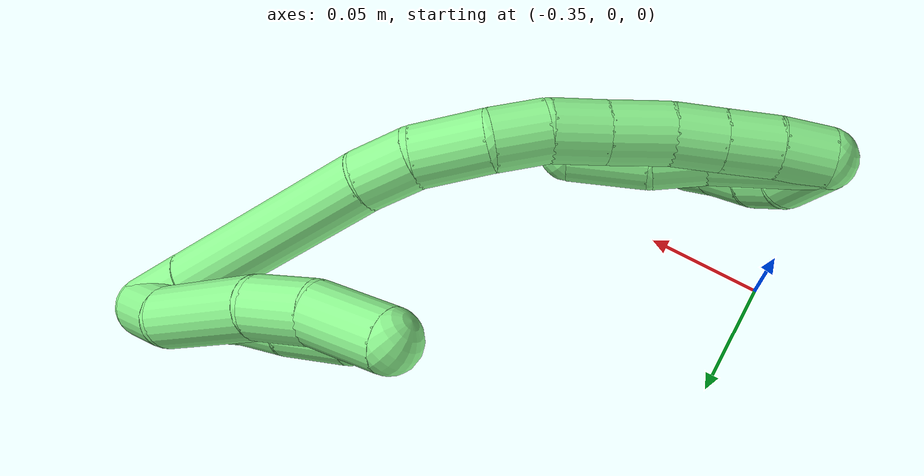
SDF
<sdf version="1.7">
 <world name="default">
  <model name="13">
   <static>0</static>
   <link name="13">
    <collision name="collision-cylinder-e_1_2_8">
     <pose>0.002702 -0.010104 -0.010222 2.36197 0.185836 0.446098</pose>
     <geometry><cylinder><radius>0.0125</radius><length>0.02925</length></cylinder></geometry>
     <surface>
      <friction><ode><mu>1.16</mu><mu2>1.16</mu2><slip1>0</slip1><slip2>0</slip2></ode></friction>
      <contact><ode><kp>1e+06</kp><kd>1</kd><max_vel>0</max_vel><min_depth>0.001</min_depth></ode></contact>
     </surface>
    </collision>
    <visual name="visual-cylinder-e_1_2_8">
     <pose>0.002702 -0.010104 -0.010222 2.36197 0.185836 0.446098</pose>
     <geometry><cylinder><radius>0.0125</radius><length>0.02925</length></cylinder></geometry>
     <material><ambient>0.564706 0.984314 0.572549 1</ambient></material>
    </visual>
    <collision name="collision-cylinder-e_2_8_9">
     <pose>0.005281 -0.034804 -0.045813 2.61953 -0.004215 -0.015778</pose>
     <geometry><cylinder><radius>0.0125</radius><length>0.058537</length></cylinder></geometry>
     <surface>
      <friction><ode><mu>1.16</mu><mu2>1.16</mu2><slip1>0</slip1><slip2>0</slip2></ode></friction>
      <contact><ode><kp>1e+06</kp><kd>1</kd><max_vel>0</max_vel><min_depth>0.001</min_depth></ode></contact>
     </surface>
    </collision>
    <visual name="visual-cylinder-e_2_8_9">
     <pose>0.005281 -0.034804 -0.045813 2.61953 -0.004215 -0.015778</pose>
     <geometry><cylinder><radius>0.0125</radius><length>0.058537</length></cylinder></geometry>
     <material><ambient>0.564706 0.984314 0.572549 1</ambient></material>
    </visual>
    <collision name="collision-cylinder-e_3_9_10">
     <pose>0.001836 -0.057222 -0.082377 2.53161 -0.238569 -0.727541</pose>
     <geometry><cylinder><radius>0.0125</radius><length>0.02811</length></cylinder></geometry>
     <surface>
      <friction><ode><mu>1.16</mu><mu2>1.16</mu2><slip1>0</slip1><slip2>0</slip2></ode></friction>
      <contact><ode><kp>1e+06</kp><kd>1</kd><max_vel>0</max_vel><min_depth>0.001</min_depth></ode></contact>
     </surface>
    </collision>
    <visual name="visual-cylinder-e_3_9_10">
     <pose>0.001836 -0.057222 -0.082377 2.53161 -0.238569 -0.727541</pose>
     <geometry><cylinder><radius>0.0125</radius><length>0.02811</length></cylinder></geometry>
     <material><ambient>0.564706 0.984314 0.572549 1</ambient></material>
    </visual>
    <collision name="collision-cylinder-e_4_10_6">
     <pose>-0.006226 -0.077117 -0.104642 2.31302 -0.281748 -0.623931</pose>
     <geometry><cylinder><radius>0.0125</radius><length>0.034104</length></cylinder></geometry>
     <surface>
      <friction><ode><mu>1.16</mu><mu2>1.16</mu2><slip1>0</slip1><slip2>0</slip2></ode></friction>
      <contact><ode><kp>1e+06</kp><kd>1</kd><max_vel>0</max_vel><min_depth>0.001</min_depth></ode></contact>
     </surface>
    </collision>
    <visual name="visual-cylinder-e_4_10_6">
     <pose>-0.006226 -0.077117 -0.104642 2.31302 -0.281748 -0.623931</pose>
     <geometry><cylinder><radius>0.0125</radius><length>0.034104</length></cylinder></geometry>
     <material><ambient>0.564706 0.984314 0.572549 1</ambient></material>
    </visual>
    <collision name="collision-cylinder-e_1_2_11">
     <pose>-0.010287 -0.010885 -0.017678 2.58968 -0.460056 -1.3819</pose>
     <geometry><cylinder><radius>0.0125</radius><length>0.04634</length></cylinder></geometry>
     <surface>
      <friction><ode><mu>1.16</mu><mu2>1.16</mu2><slip1>0</slip1><slip2>0</slip2></ode></friction>
      <contact><ode><kp>1e+06</kp><kd>1</kd><max_vel>0</max_vel><min_depth>0.001</min_depth></ode></contact>
     </surface>
    </collision>
    <visual name="visual-cylinder-e_1_2_11">
     <pose>-0.010287 -0.010885 -0.017678 2.58968 -0.460056 -1.3819</pose>
     <geometry><cylinder><radius>0.0125</radius><length>0.04634</length></cylinder></geometry>
     <material><ambient>0.564706 0.984314 0.572549 1</ambient></material>
    </visual>
    <collision name="collision-cylinder-e_2_11_12">
     <pose>-0.023511 -0.029089 -0.043676 2.42013 -0.259079 -0.665004</pose>
     <geometry><cylinder><radius>0.0125</radius><length>0.022925</length></cylinder></geometry>
     <surface>
      <friction><ode><mu>1.16</mu><mu2>1.16</mu2><slip1>0</slip1><slip2>0</slip2></ode></friction>
      <contact><ode><kp>1e+06</kp><kd>1</kd><max_vel>0</max_vel><min_depth>0.001</min_depth></ode></contact>
     </surface>
    </collision>
    <visual name="visual-cylinder-e_2_11_12">
     <pose>-0.023511 -0.029089 -0.043676 2.42013 -0.259079 -0.665004</pose>
     <geometry><cylinder><radius>0.0125</radius><length>0.022925</length></cylinder></geometry>
     <material><ambient>0.564706 0.984314 0.572549 1</ambient></material>
    </visual>
    <collision name="collision-cylinder-e_3_12_5">
     <pose>-0.030811 -0.045118 -0.06388 2.50906 -0.287879 -0.833881</pose>
     <geometry><cylinder><radius>0.0125</radius><length>0.030735</length></cylinder></geometry>
     <surface>
      <friction><ode><mu>1.16</mu><mu2>1.16</mu2><slip1>0</slip1><slip2>0</slip2></ode></friction>
      <contact><ode><kp>1e+06</kp><kd>1</kd><max_vel>0</max_vel><min_depth>0.001</min_depth></ode></contact>
     </surface>
    </collision>
    <visual name="visual-cylinder-e_3_12_5">
     <pose>-0.030811 -0.045118 -0.06388 2.50906 -0.287879 -0.833881</pose>
     <geometry><cylinder><radius>0.0125</radius><length>0.030735</length></cylinder></geometry>
     <material><ambient>0.564706 0.984314 0.572549 1</ambient></material>
    </visual>
    <collision name="collision-cylinder-e_1_2_13">
     <pose>-0.002332 -0.001373 -0.012957 3.03603 -0.177109 -2.0681</pose>
     <geometry><cylinder><radius>0.0125</radius><length>0.026472</length></cylinder></geometry>
     <surface>
      <friction><ode><mu>1.16</mu><mu2>1.16</mu2><slip1>0</slip1><slip2>0</slip2></ode></friction>
      <contact><ode><kp>1e+06</kp><kd>1</kd><max_vel>0</max_vel><min_depth>0.001</min_depth></ode></contact>
     </surface>
    </collision>
    <visual name="visual-cylinder-e_1_2_13">
     <pose>-0.002332 -0.001373 -0.012957 3.03603 -0.177109 -2.0681</pose>
     <geometry><cylinder><radius>0.0125</radius><length>0.026472</length></cylinder></geometry>
     <material><ambient>0.564706 0.984314 0.572549 1</ambient></material>
    </visual>
    <collision name="collision-cylinder-e_2_13_14">
     <pose>-0.01391 -0.006301 -0.069169 3.05959 -0.209905 -2.3988</pose>
     <geometry><cylinder><radius>0.0125</radius><length>0.08875</length></cylinder></geometry>
     <surface>
      <friction><ode><mu>1.16</mu><mu2>1.16</mu2><slip1>0</slip1><slip2>0</slip2></ode></friction>
      <contact><ode><kp>1e+06</kp><kd>1</kd><max_vel>0</max_vel><min_depth>0.001</min_depth></ode></contact>
     </surface>
    </collision>
    <visual name="visual-cylinder-e_2_13_14">
     <pose>-0.01391 -0.006301 -0.069169 3.05959 -0.209905 -2.3988</pose>
     <geometry><cylinder><radius>0.0125</radius><length>0.08875</length></cylinder></geometry>
     <material><ambient>0.564706 0.984314 0.572549 1</ambient></material>
    </visual>
    <collision name="collision-cylinder-e_3_14_15">
     <pose>-0.026942 -0.01095 -0.123177 3.04026 -0.336868 -2.56194</pose>
     <geometry><cylinder><radius>0.0125</radius><length>0.022905</length></cylinder></geometry>
     <surface>
      <friction><ode><mu>1.16</mu><mu2>1.16</mu2><slip1>0</slip1><slip2>0</slip2></ode></friction>
      <contact><ode><kp>1e+06</kp><kd>1</kd><max_vel>0</max_vel><min_depth>0.001</min_depth></ode></contact>
     </surface>
    </collision>
    <visual name="visual-cylinder-e_3_14_15">
     <pose>-0.026942 -0.01095 -0.123177 3.04026 -0.336868 -2.56194</pose>
     <geometry><cylinder><radius>0.0125</radius><length>0.022905</length></cylinder></geometry>
     <material><ambient>0.564706 0.984314 0.572549 1</ambient></material>
    </visual>
    <collision name="collision-cylinder-e_4_15_16">
     <pose>-0.038523 -0.014576 -0.146184 2.93775 -0.55719 -2.45479</pose>
     <geometry><cylinder><radius>0.0125</radius><length>0.029485</length></cylinder></geometry>
     <surface>
      <friction><ode><mu>1.16</mu><mu2>1.16</mu2><slip1>0</slip1><slip2>0</slip2></ode></friction>
      <contact><ode><kp>1e+06</kp><kd>1</kd><max_vel>0</max_vel><min_depth>0.001</min_depth></ode></contact>
     </surface>
    </collision>
    <visual name="visual-cylinder-e_4_15_16">
     <pose>-0.038523 -0.014576 -0.146184 2.93775 -0.55719 -2.45479</pose>
     <geometry><cylinder><radius>0.0125</radius><length>0.029485</length></cylinder></geometry>
     <material><ambient>0.564706 0.984314 0.572549 1</ambient></material>
    </visual>
    <collision name="collision-cylinder-e_5_16_17">
     <pose>-0.054254 -0.017623 -0.166032 3.07404 -0.806158 -2.98344</pose>
     <geometry><cylinder><radius>0.0125</radius><length>0.021992</length></cylinder></geometry>
     <surface>
      <friction><ode><mu>1.16</mu><mu2>1.16</mu2><slip1>0</slip1><slip2>0</slip2></ode></friction>
      <contact><ode><kp>1e+06</kp><kd>1</kd><max_vel>0</max_vel><min_depth>0.001</min_depth></ode></contact>
     </surface>
    </collision>
    <visual name="visual-cylinder-e_5_16_17">
     <pose>-0.054254 -0.017623 -0.166032 3.07404 -0.806158 -2.98344</pose>
     <geometry><cylinder><radius>0.0125</radius><length>0.021992</length></cylinder></geometry>
     <material><ambient>0.564706 0.984314 0.572549 1</ambient></material>
    </visual>
    <collision name="collision-cylinder-e_6_17_18">
     <pose>-0.071406 -0.019791 -0.17955 2.8692 -0.98238 -2.63998</pose>
     <geometry><cylinder><radius>0.0125</radius><length>0.022162</length></cylinder></geometry>
     <surface>
      <friction><ode><mu>1.16</mu><mu2>1.16</mu2><slip1>0</slip1><slip2>0</slip2></ode></friction>
      <contact><ode><kp>1e+06</kp><kd>1</kd><max_vel>0</max_vel><min_depth>0.001</min_depth></ode></contact>
     </surface>
    </collision>
    <visual name="visual-cylinder-e_6_17_18">
     <pose>-0.071406 -0.019791 -0.17955 2.8692 -0.98238 -2.63998</pose>
     <geometry><cylinder><radius>0.0125</radius><length>0.022162</length></cylinder></geometry>
     <material><ambient>0.564706 0.984314 0.572549 1</ambient></material>
    </visual>
    <collision name="collision-cylinder-e_7_18_19">
     <pose>-0.090985 -0.02334 -0.192508 2.87858 -0.958043 -2.64285</pose>
     <geometry><cylinder><radius>0.0125</radius><length>0.025332</length></cylinder></geometry>
     <surface>
      <friction><ode><mu>1.16</mu><mu2>1.16</mu2><slip1>0</slip1><slip2>0</slip2></ode></friction>
      <contact><ode><kp>1e+06</kp><kd>1</kd><max_vel>0</max_vel><min_depth>0.001</min_depth></ode></contact>
     </surface>
    </collision>
    <visual name="visual-cylinder-e_7_18_19">
     <pose>-0.090985 -0.02334 -0.192508 2.87858 -0.958043 -2.64285</pose>
     <geometry><cylinder><radius>0.0125</radius><length>0.025332</length></cylinder></geometry>
     <material><ambient>0.564706 0.984314 0.572549 1</ambient></material>
    </visual>
    <collision name="collision-cylinder-e_8_19_20">
     <pose>-0.10963 -0.027887 -0.204712 2.66745 -0.959022 -2.27165</pose>
     <geometry><cylinder><radius>0.0125</radius><length>0.020238</length></cylinder></geometry>
     <surface>
      <friction><ode><mu>1.16</mu><mu2>1.16</mu2><slip1>0</slip1><slip2>0</slip2></ode></friction>
      <contact><ode><kp>1e+06</kp><kd>1</kd><max_vel>0</max_vel><min_depth>0.001</min_depth></ode></contact>
     </surface>
    </collision>
    <visual name="visual-cylinder-e_8_19_20">
     <pose>-0.10963 -0.027887 -0.204712 2.66745 -0.959022 -2.27165</pose>
     <geometry><cylinder><radius>0.0125</radius><length>0.020238</length></cylinder></geometry>
     <material><ambient>0.564706 0.984314 0.572549 1</ambient></material>
    </visual>
    <collision name="collision-cylinder-e_9_20_21">
     <pose>-0.126901 -0.033371 -0.215518 2.67618 -0.95891 -2.28619</pose>
     <geometry><cylinder><radius>0.0125</radius><length>0.021958</length></cylinder></geometry>
     <surface>
      <friction><ode><mu>1.16</mu><mu2>1.16</mu2><slip1>0</slip1><slip2>0</slip2></ode></friction>
      <contact><ode><kp>1e+06</kp><kd>1</kd><max_vel>0</max_vel><min_depth>0.001</min_depth></ode></contact>
     </surface>
    </collision>
    <visual name="visual-cylinder-e_9_20_21">
     <pose>-0.126901 -0.033371 -0.215518 2.67618 -0.95891 -2.28619</pose>
     <geometry><cylinder><radius>0.0125</radius><length>0.021958</length></cylinder></geometry>
     <material><ambient>0.564706 0.984314 0.572549 1</ambient></material>
    </visual>
    <collision name="collision-cylinder-e_10_21_1">
     <pose>-0.14461 -0.039377 -0.22574 2.53592 -1.00183 -2.10442</pose>
     <geometry><cylinder><radius>0.0125</radius><length>0.020707</length></cylinder></geometry>
     <surface>
      <friction><ode><mu>1.16</mu><mu2>1.16</mu2><slip1>0</slip1><slip2>0</slip2></ode></friction>
      <contact><ode><kp>1e+06</kp><kd>1</kd><max_vel>0</max_vel><min_depth>0.001</min_depth></ode></contact>
     </surface>
    </collision>
    <visual name="visual-cylinder-e_10_21_1">
     <pose>-0.14461 -0.039377 -0.22574 2.53592 -1.00183 -2.10442</pose>
     <geometry><cylinder><radius>0.0125</radius><length>0.020707</length></cylinder></geometry>
     <material><ambient>0.564706 0.984314 0.572549 1</ambient></material>
    </visual>
    <collision name="collision-cylinder-e_1_1_22">
     <pose>-0.158288 -0.036808 -0.218582 -0.45495 -0.362277 0.084739</pose>
     <geometry><cylinder><radius>0.0125</radius><length>0.027962</length></cylinder></geometry>
     <surface>
      <friction><ode><mu>1.16</mu><mu2>1.16</mu2><slip1>0</slip1><slip2>0</slip2></ode></friction>
      <contact><ode><kp>1e+06</kp><kd>1</kd><max_vel>0</max_vel><min_depth>0.001</min_depth></ode></contact>
     </surface>
    </collision>
    <visual name="visual-cylinder-e_1_1_22">
     <pose>-0.158288 -0.036808 -0.218582 -0.45495 -0.362277 0.084739</pose>
     <geometry><cylinder><radius>0.0125</radius><length>0.027962</length></cylinder></geometry>
     <material><ambient>0.564706 0.984314 0.572549 1</ambient></material>
    </visual>
    <collision name="collision-cylinder-e_2_22_23">
     <pose>-0.16599 -0.024478 -0.199611 -0.738949 -0.273984 0.10667</pose>
     <geometry><cylinder><radius>0.0125</radius><length>0.020311</length></cylinder></geometry>
     <surface>
      <friction><ode><mu>1.16</mu><mu2>1.16</mu2><slip1>0</slip1><slip2>0</slip2></ode></friction>
      <contact><ode><kp>1e+06</kp><kd>1</kd><max_vel>0</max_vel><min_depth>0.001</min_depth></ode></contact>
     </surface>
    </collision>
    <visual name="visual-cylinder-e_2_22_23">
     <pose>-0.16599 -0.024478 -0.199611 -0.738949 -0.273984 0.10667</pose>
     <geometry><cylinder><radius>0.0125</radius><length>0.020311</length></cylinder></geometry>
     <material><ambient>0.564706 0.984314 0.572549 1</ambient></material>
    </visual>
    <collision name="collision-cylinder-e_3_23_24">
     <pose>-0.172439 -0.006879 -0.183664 -0.901159 -0.257602 0.12515</pose>
     <geometry><cylinder><radius>0.0125</radius><length>0.029056</length></cylinder></geometry>
     <surface>
      <friction><ode><mu>1.16</mu><mu2>1.16</mu2><slip1>0</slip1><slip2>0</slip2></ode></friction>
      <contact><ode><kp>1e+06</kp><kd>1</kd><max_vel>0</max_vel><min_depth>0.001</min_depth></ode></contact>
     </surface>
    </collision>
    <visual name="visual-cylinder-e_3_23_24">
     <pose>-0.172439 -0.006879 -0.183664 -0.901159 -0.257602 0.12515</pose>
     <geometry><cylinder><radius>0.0125</radius><length>0.029056</length></cylinder></geometry>
     <material><ambient>0.564706 0.984314 0.572549 1</ambient></material>
    </visual>
    <collision name="collision-cylinder-e_4_24_4">
     <pose>-0.179106 0.012219 -0.167571 -0.831251 -0.264712 0.117379</pose>
     <geometry><cylinder><radius>0.0125</radius><length>0.022671</length></cylinder></geometry>
     <surface>
      <friction><ode><mu>1.16</mu><mu2>1.16</mu2><slip1>0</slip1><slip2>0</slip2></ode></friction>
      <contact><ode><kp>1e+06</kp><kd>1</kd><max_vel>0</max_vel><min_depth>0.001</min_depth></ode></contact>
     </surface>
    </collision>
    <visual name="visual-cylinder-e_4_24_4">
     <pose>-0.179106 0.012219 -0.167571 -0.831251 -0.264712 0.117379</pose>
     <geometry><cylinder><radius>0.0125</radius><length>0.022671</length></cylinder></geometry>
     <material><ambient>0.564706 0.984314 0.572549 1</ambient></material>
    </visual>
    <collision name="collision-cylinder-e_1_1_25">
     <pose>-0.140142 -0.033382 -0.213928 -0.509915 0.612146 -0.164348</pose>
     <geometry><cylinder><radius>0.0125</radius><length>0.045911</length></cylinder></geometry>
     <surface>
      <friction><ode><mu>1.16</mu><mu2>1.16</mu2><slip1>0</slip1><slip2>0</slip2></ode></friction>
      <contact><ode><kp>1e+06</kp><kd>1</kd><max_vel>0</max_vel><min_depth>0.001</min_depth></ode></contact>
     </surface>
    </collision>
    <visual name="visual-cylinder-e_1_1_25">
     <pose>-0.140142 -0.033382 -0.213928 -0.509915 0.612146 -0.164348</pose>
     <geometry><cylinder><radius>0.0125</radius><length>0.045911</length></cylinder></geometry>
     <material><ambient>0.564706 0.984314 0.572549 1</ambient></material>
    </visual>
    <collision name="collision-cylinder-e_2_25_26">
     <pose>-0.119601 -0.021822 -0.18942 -0.286522 0.715573 -0.107759</pose>
     <geometry><cylinder><radius>0.0125</radius><length>0.022408</length></cylinder></geometry>
     <surface>
      <friction><ode><mu>1.16</mu><mu2>1.16</mu2><slip1>0</slip1><slip2>0</slip2></ode></friction>
      <contact><ode><kp>1e+06</kp><kd>1</kd><max_vel>0</max_vel><min_depth>0.001</min_depth></ode></contact>
     </surface>
    </collision>
    <visual name="visual-cylinder-e_2_25_26">
     <pose>-0.119601 -0.021822 -0.18942 -0.286522 0.715573 -0.107759</pose>
     <geometry><cylinder><radius>0.0125</radius><length>0.022408</length></cylinder></geometry>
     <material><ambient>0.564706 0.984314 0.572549 1</ambient></material>
    </visual>
    <collision name="collision-cylinder-e_3_26_3">
     <pose>-0.101827 -0.013098 -0.171202 -0.559846 0.718149 -0.214971</pose>
     <geometry><cylinder><radius>0.0125</radius><length>0.031681</length></cylinder></geometry>
     <surface>
      <friction><ode><mu>1.16</mu><mu2>1.16</mu2><slip1>0</slip1><slip2>0</slip2></ode></friction>
      <contact><ode><kp>1e+06</kp><kd>1</kd><max_vel>0</max_vel><min_depth>0.001</min_depth></ode></contact>
     </surface>
    </collision>
    <visual name="visual-cylinder-e_3_26_3">
     <pose>-0.101827 -0.013098 -0.171202 -0.559846 0.718149 -0.214971</pose>
     <geometry><cylinder><radius>0.0125</radius><length>0.031681</length></cylinder></geometry>
     <material><ambient>0.564706 0.984314 0.572549 1</ambient></material>
    </visual>
    <collision name="collision-sphere-3">
     <pose>-0.091404 -0.006764 -0.161094 0 -0 0</pose>
     <geometry><sphere><radius>0.0125</radius></sphere></geometry>
     <surface>
      <friction><ode><mu>1.16</mu><mu2>1.16</mu2><slip1>0</slip1><slip2>0</slip2></ode></friction>
      <contact><ode><kp>1e+06</kp><kd>1</kd><max_vel>0</max_vel><min_depth>0.001</min_depth></ode></contact>
     </surface>
    </collision>
    <visual name="visual-sphere-3">
     <pose>-0.091404 -0.006764 -0.161094 0 -0 0</pose>
     <geometry><sphere><radius>0.0125</radius></sphere></geometry>
     <material><ambient>0.564706 0.984314 0.572549 1</ambient></material>
    </visual>
    <collision name="collision-sphere-26">
     <pose>-0.11225 -0.019433 -0.181309 0 -0 0</pose>
     <geometry><sphere><radius>0.0125</radius></sphere></geometry>
     <surface>
      <friction><ode><mu>1.16</mu><mu2>1.16</mu2><slip1>0</slip1><slip2>0</slip2></ode></friction>
      <contact><ode><kp>1e+06</kp><kd>1</kd><max_vel>0</max_vel><min_depth>0.001</min_depth></ode></contact>
     </surface>
    </collision>
    <visual name="visual-sphere-26">
     <pose>-0.11225 -0.019433 -0.181309 0 -0 0</pose>
     <geometry><sphere><radius>0.0125</radius></sphere></geometry>
     <material><ambient>0.564706 0.984314 0.572549 1</ambient></material>
    </visual>
    <collision name="collision-sphere-25">
     <pose>-0.126951 -0.024212 -0.197531 0 -0 0</pose>
     <geometry><sphere><radius>0.0125</radius></sphere></geometry>
     <surface>
      <friction><ode><mu>1.16</mu><mu2>1.16</mu2><slip1>0</slip1><slip2>0</slip2></ode></friction>
      <contact><ode><kp>1e+06</kp><kd>1</kd><max_vel>0</max_vel><min_depth>0.001</min_depth></ode></contact>
     </surface>
    </collision>
    <visual name="visual-sphere-25">
     <pose>-0.126951 -0.024212 -0.197531 0 -0 0</pose>
     <geometry><sphere><radius>0.0125</radius></sphere></geometry>
     <material><ambient>0.564706 0.984314 0.572549 1</ambient></material>
    </visual>
    <collision name="collision-sphere-4">
     <pose>-0.182072 0.020301 -0.160198 0 -0 0</pose>
     <geometry><sphere><radius>0.0125</radius></sphere></geometry>
     <surface>
      <friction><ode><mu>1.16</mu><mu2>1.16</mu2><slip1>0</slip1><slip2>0</slip2></ode></friction>
      <contact><ode><kp>1e+06</kp><kd>1</kd><max_vel>0</max_vel><min_depth>0.001</min_depth></ode></contact>
     </surface>
    </collision>
    <visual name="visual-sphere-4">
     <pose>-0.182072 0.020301 -0.160198 0 -0 0</pose>
     <geometry><sphere><radius>0.0125</radius></sphere></geometry>
     <material><ambient>0.564706 0.984314 0.572549 1</ambient></material>
    </visual>
    <collision name="collision-sphere-24">
     <pose>-0.176141 0.004136 -0.174944 0 -0 0</pose>
     <geometry><sphere><radius>0.0125</radius></sphere></geometry>
     <surface>
      <friction><ode><mu>1.16</mu><mu2>1.16</mu2><slip1>0</slip1><slip2>0</slip2></ode></friction>
      <contact><ode><kp>1e+06</kp><kd>1</kd><max_vel>0</max_vel><min_depth>0.001</min_depth></ode></contact>
     </surface>
    </collision>
    <visual name="visual-sphere-24">
     <pose>-0.176141 0.004136 -0.174944 0 -0 0</pose>
     <geometry><sphere><radius>0.0125</radius></sphere></geometry>
     <material><ambient>0.564706 0.984314 0.572549 1</ambient></material>
    </visual>
    <collision name="collision-sphere-23">
     <pose>-0.168738 -0.017893 -0.192384 0 -0 0</pose>
     <geometry><sphere><radius>0.0125</radius></sphere></geometry>
     <surface>
      <friction><ode><mu>1.16</mu><mu2>1.16</mu2><slip1>0</slip1><slip2>0</slip2></ode></friction>
      <contact><ode><kp>1e+06</kp><kd>1</kd><max_vel>0</max_vel><min_depth>0.001</min_depth></ode></contact>
     </surface>
    </collision>
    <visual name="visual-sphere-23">
     <pose>-0.168738 -0.017893 -0.192384 0 -0 0</pose>
     <geometry><sphere><radius>0.0125</radius></sphere></geometry>
     <material><ambient>0.564706 0.984314 0.572549 1</ambient></material>
    </visual>
    <collision name="collision-sphere-22">
     <pose>-0.163243 -0.031063 -0.206838 0 -0 0</pose>
     <geometry><sphere><radius>0.0125</radius></sphere></geometry>
     <surface>
      <friction><ode><mu>1.16</mu><mu2>1.16</mu2><slip1>0</slip1><slip2>0</slip2></ode></friction>
      <contact><ode><kp>1e+06</kp><kd>1</kd><max_vel>0</max_vel><min_depth>0.001</min_depth></ode></contact>
     </surface>
    </collision>
    <visual name="visual-sphere-22">
     <pose>-0.163243 -0.031063 -0.206838 0 -0 0</pose>
     <geometry><sphere><radius>0.0125</radius></sphere></geometry>
     <material><ambient>0.564706 0.984314 0.572549 1</ambient></material>
    </visual>
    <collision name="collision-sphere-1">
     <pose>-0.153333 -0.042552 -0.230326 0 -0 0</pose>
     <geometry><sphere><radius>0.0125</radius></sphere></geometry>
     <surface>
      <friction><ode><mu>1.16</mu><mu2>1.16</mu2><slip1>0</slip1><slip2>0</slip2></ode></friction>
      <contact><ode><kp>1e+06</kp><kd>1</kd><max_vel>0</max_vel><min_depth>0.001</min_depth></ode></contact>
     </surface>
    </collision>
    <visual name="visual-sphere-1">
     <pose>-0.153333 -0.042552 -0.230326 0 -0 0</pose>
     <geometry><sphere><radius>0.0125</radius></sphere></geometry>
     <material><ambient>0.564706 0.984314 0.572549 1</ambient></material>
    </visual>
    <collision name="collision-sphere-21">
     <pose>-0.135888 -0.036201 -0.221154 0 -0 0</pose>
     <geometry><sphere><radius>0.0125</radius></sphere></geometry>
     <surface>
      <friction><ode><mu>1.16</mu><mu2>1.16</mu2><slip1>0</slip1><slip2>0</slip2></ode></friction>
      <contact><ode><kp>1e+06</kp><kd>1</kd><max_vel>0</max_vel><min_depth>0.001</min_depth></ode></contact>
     </surface>
    </collision>
    <visual name="visual-sphere-21">
     <pose>-0.135888 -0.036201 -0.221154 0 -0 0</pose>
     <geometry><sphere><radius>0.0125</radius></sphere></geometry>
     <material><ambient>0.564706 0.984314 0.572549 1</ambient></material>
    </visual>
    <collision name="collision-sphere-11">
     <pose>-0.020575 -0.02177 -0.035357 0 -0 0</pose>
     <geometry><sphere><radius>0.0125</radius></sphere></geometry>
     <surface>
      <friction><ode><mu>1.16</mu><mu2>1.16</mu2><slip1>0</slip1><slip2>0</slip2></ode></friction>
      <contact><ode><kp>1e+06</kp><kd>1</kd><max_vel>0</max_vel><min_depth>0.001</min_depth></ode></contact>
     </surface>
    </collision>
    <visual name="visual-sphere-11">
     <pose>-0.020575 -0.02177 -0.035357 0 -0 0</pose>
     <geometry><sphere><radius>0.0125</radius></sphere></geometry>
     <material><ambient>0.564706 0.984314 0.572549 1</ambient></material>
    </visual>
    <collision name="collision-sphere-6">
     <pose>-0.010967 -0.089188 -0.115713 0 -0 0</pose>
     <geometry><sphere><radius>0.0125</radius></sphere></geometry>
     <surface>
      <friction><ode><mu>1.16</mu><mu2>1.16</mu2><slip1>0</slip1><slip2>0</slip2></ode></friction>
      <contact><ode><kp>1e+06</kp><kd>1</kd><max_vel>0</max_vel><min_depth>0.001</min_depth></ode></contact>
     </surface>
    </collision>
    <visual name="visual-sphere-6">
     <pose>-0.010967 -0.089188 -0.115713 0 -0 0</pose>
     <geometry><sphere><radius>0.0125</radius></sphere></geometry>
     <material><ambient>0.564706 0.984314 0.572549 1</ambient></material>
    </visual>
    <collision name="collision-sphere-10">
     <pose>-0.001485 -0.065046 -0.093571 0 -0 0</pose>
     <geometry><sphere><radius>0.0125</radius></sphere></geometry>
     <surface>
      <friction><ode><mu>1.16</mu><mu2>1.16</mu2><slip1>0</slip1><slip2>0</slip2></ode></friction>
      <contact><ode><kp>1e+06</kp><kd>1</kd><max_vel>0</max_vel><min_depth>0.001</min_depth></ode></contact>
     </surface>
    </collision>
    <visual name="visual-sphere-10">
     <pose>-0.001485 -0.065046 -0.093571 0 -0 0</pose>
     <geometry><sphere><radius>0.0125</radius></sphere></geometry>
     <material><ambient>0.564706 0.984314 0.572549 1</ambient></material>
    </visual>
    <collision name="collision-sphere-9">
     <pose>0.005158 -0.049399 -0.071183 0 -0 0</pose>
     <geometry><sphere><radius>0.0125</radius></sphere></geometry>
     <surface>
      <friction><ode><mu>1.16</mu><mu2>1.16</mu2><slip1>0</slip1><slip2>0</slip2></ode></friction>
      <contact><ode><kp>1e+06</kp><kd>1</kd><max_vel>0</max_vel><min_depth>0.001</min_depth></ode></contact>
     </surface>
    </collision>
    <visual name="visual-sphere-9">
     <pose>0.005158 -0.049399 -0.071183 0 -0 0</pose>
     <geometry><sphere><radius>0.0125</radius></sphere></geometry>
     <material><ambient>0.564706 0.984314 0.572549 1</ambient></material>
    </visual>
    <collision name="collision-sphere-2">
     <geometry><sphere><radius>0.0125</radius></sphere></geometry>
     <surface>
      <friction><ode><mu>1.16</mu><mu2>1.16</mu2><slip1>0</slip1><slip2>0</slip2></ode></friction>
      <contact><ode><kp>1e+06</kp><kd>1</kd><max_vel>0</max_vel><min_depth>0.001</min_depth></ode></contact>
     </surface>
    </collision>
    <visual name="visual-sphere-2">
     <geometry><sphere><radius>0.0125</radius></sphere></geometry>
     <material><ambient>0.564706 0.984314 0.572549 1</ambient></material>
    </visual>
    <collision name="collision-sphere-19">
     <pose>-0.101347 -0.025234 -0.199542 0 -0 0</pose>
     <geometry><sphere><radius>0.0125</radius></sphere></geometry>
     <surface>
      <friction><ode><mu>1.16</mu><mu2>1.16</mu2><slip1>0</slip1><slip2>0</slip2></ode></friction>
      <contact><ode><kp>1e+06</kp><kd>1</kd><max_vel>0</max_vel><min_depth>0.001</min_depth></ode></contact>
     </surface>
    </collision>
    <visual name="visual-sphere-19">
     <pose>-0.101347 -0.025234 -0.199542 0 -0 0</pose>
     <geometry><sphere><radius>0.0125</radius></sphere></geometry>
     <material><ambient>0.564706 0.984314 0.572549 1</ambient></material>
    </visual>
    <collision name="collision-sphere-8">
     <pose>0.005404 -0.020209 -0.020444 0 -0 0</pose>
     <geometry><sphere><radius>0.0125</radius></sphere></geometry>
     <surface>
      <friction><ode><mu>1.16</mu><mu2>1.16</mu2><slip1>0</slip1><slip2>0</slip2></ode></friction>
      <contact><ode><kp>1e+06</kp><kd>1</kd><max_vel>0</max_vel><min_depth>0.001</min_depth></ode></contact>
     </surface>
    </collision>
    <visual name="visual-sphere-8">
     <pose>0.005404 -0.020209 -0.020444 0 -0 0</pose>
     <geometry><sphere><radius>0.0125</radius></sphere></geometry>
     <material><ambient>0.564706 0.984314 0.572549 1</ambient></material>
    </visual>
    <collision name="collision-sphere-12">
     <pose>-0.026448 -0.036407 -0.051995 0 -0 0</pose>
     <geometry><sphere><radius>0.0125</radius></sphere></geometry>
     <surface>
      <friction><ode><mu>1.16</mu><mu2>1.16</mu2><slip1>0</slip1><slip2>0</slip2></ode></friction>
      <contact><ode><kp>1e+06</kp><kd>1</kd><max_vel>0</max_vel><min_depth>0.001</min_depth></ode></contact>
     </surface>
    </collision>
    <visual name="visual-sphere-12">
     <pose>-0.026448 -0.036407 -0.051995 0 -0 0</pose>
     <geometry><sphere><radius>0.0125</radius></sphere></geometry>
     <material><ambient>0.564706 0.984314 0.572549 1</ambient></material>
    </visual>
    <collision name="collision-sphere-5">
     <pose>-0.035174 -0.053829 -0.075764 0 -0 0</pose>
     <geometry><sphere><radius>0.0125</radius></sphere></geometry>
     <surface>
      <friction><ode><mu>1.16</mu><mu2>1.16</mu2><slip1>0</slip1><slip2>0</slip2></ode></friction>
      <contact><ode><kp>1e+06</kp><kd>1</kd><max_vel>0</max_vel><min_depth>0.001</min_depth></ode></contact>
     </surface>
    </collision>
    <visual name="visual-sphere-5">
     <pose>-0.035174 -0.053829 -0.075764 0 -0 0</pose>
     <geometry><sphere><radius>0.0125</radius></sphere></geometry>
     <material><ambient>0.564706 0.984314 0.572549 1</ambient></material>
    </visual>
    <collision name="collision-sphere-13">
     <pose>-0.004664 -0.002746 -0.025913 0 -0 0</pose>
     <geometry><sphere><radius>0.0125</radius></sphere></geometry>
     <surface>
      <friction><ode><mu>1.16</mu><mu2>1.16</mu2><slip1>0</slip1><slip2>0</slip2></ode></friction>
      <contact><ode><kp>1e+06</kp><kd>1</kd><max_vel>0</max_vel><min_depth>0.001</min_depth></ode></contact>
     </surface>
    </collision>
    <visual name="visual-sphere-13">
     <pose>-0.004664 -0.002746 -0.025913 0 -0 0</pose>
     <geometry><sphere><radius>0.0125</radius></sphere></geometry>
     <material><ambient>0.564706 0.984314 0.572549 1</ambient></material>
    </visual>
    <collision name="collision-sphere-14">
     <pose>-0.023157 -0.009856 -0.112424 0 -0 0</pose>
     <geometry><sphere><radius>0.0125</radius></sphere></geometry>
     <surface>
      <friction><ode><mu>1.16</mu><mu2>1.16</mu2><slip1>0</slip1><slip2>0</slip2></ode></friction>
      <contact><ode><kp>1e+06</kp><kd>1</kd><max_vel>0</max_vel><min_depth>0.001</min_depth></ode></contact>
     </surface>
    </collision>
    <visual name="visual-sphere-14">
     <pose>-0.023157 -0.009856 -0.112424 0 -0 0</pose>
     <geometry><sphere><radius>0.0125</radius></sphere></geometry>
     <material><ambient>0.564706 0.984314 0.572549 1</ambient></material>
    </visual>
    <collision name="collision-sphere-15">
     <pose>-0.030727 -0.012043 -0.13393 0 -0 0</pose>
     <geometry><sphere><radius>0.0125</radius></sphere></geometry>
     <surface>
      <friction><ode><mu>1.16</mu><mu2>1.16</mu2><slip1>0</slip1><slip2>0</slip2></ode></friction>
      <contact><ode><kp>1e+06</kp><kd>1</kd><max_vel>0</max_vel><min_depth>0.001</min_depth></ode></contact>
     </surface>
    </collision>
    <visual name="visual-sphere-15">
     <pose>-0.030727 -0.012043 -0.13393 0 -0 0</pose>
     <geometry><sphere><radius>0.0125</radius></sphere></geometry>
     <material><ambient>0.564706 0.984314 0.572549 1</ambient></material>
    </visual>
    <collision name="collision-sphere-16">
     <pose>-0.046319 -0.017109 -0.158437 0 -0 0</pose>
     <geometry><sphere><radius>0.0125</radius></sphere></geometry>
     <surface>
      <friction><ode><mu>1.16</mu><mu2>1.16</mu2><slip1>0</slip1><slip2>0</slip2></ode></friction>
      <contact><ode><kp>1e+06</kp><kd>1</kd><max_vel>0</max_vel><min_depth>0.001</min_depth></ode></contact>
     </surface>
    </collision>
    <visual name="visual-sphere-16">
     <pose>-0.046319 -0.017109 -0.158437 0 -0 0</pose>
     <geometry><sphere><radius>0.0125</radius></sphere></geometry>
     <material><ambient>0.564706 0.984314 0.572549 1</ambient></material>
    </visual>
    <collision name="collision-sphere-17">
     <pose>-0.062189 -0.018137 -0.173626 0 -0 0</pose>
     <geometry><sphere><radius>0.0125</radius></sphere></geometry>
     <surface>
      <friction><ode><mu>1.16</mu><mu2>1.16</mu2><slip1>0</slip1><slip2>0</slip2></ode></friction>
      <contact><ode><kp>1e+06</kp><kd>1</kd><max_vel>0</max_vel><min_depth>0.001</min_depth></ode></contact>
     </surface>
    </collision>
    <visual name="visual-sphere-17">
     <pose>-0.062189 -0.018137 -0.173626 0 -0 0</pose>
     <geometry><sphere><radius>0.0125</radius></sphere></geometry>
     <material><ambient>0.564706 0.984314 0.572549 1</ambient></material>
    </visual>
    <collision name="collision-sphere-18">
     <pose>-0.080624 -0.021446 -0.185474 0 -0 0</pose>
     <geometry><sphere><radius>0.0125</radius></sphere></geometry>
     <surface>
      <friction><ode><mu>1.16</mu><mu2>1.16</mu2><slip1>0</slip1><slip2>0</slip2></ode></friction>
      <contact><ode><kp>1e+06</kp><kd>1</kd><max_vel>0</max_vel><min_depth>0.001</min_depth></ode></contact>
     </surface>
    </collision>
    <visual name="visual-sphere-18">
     <pose>-0.080624 -0.021446 -0.185474 0 -0 0</pose>
     <geometry><sphere><radius>0.0125</radius></sphere></geometry>
     <material><ambient>0.564706 0.984314 0.572549 1</ambient></material>
    </visual>
    <collision name="collision-sphere-20">
     <pose>-0.117914 -0.030541 -0.209883 0 -0 0</pose>
     <geometry><sphere><radius>0.0125</radius></sphere></geometry>
     <surface>
      <friction><ode><mu>1.16</mu><mu2>1.16</mu2><slip1>0</slip1><slip2>0</slip2></ode></friction>
      <contact><ode><kp>1e+06</kp><kd>1</kd><max_vel>0</max_vel><min_depth>0.001</min_depth></ode></contact>
     </surface>
    </collision>
    <visual name="visual-sphere-20">
     <pose>-0.117914 -0.030541 -0.209883 0 -0 0</pose>
     <geometry><sphere><radius>0.0125</radius></sphere></geometry>
     <material><ambient>0.564706 0.984314 0.572549 1</ambient></material>
    </visual>
    <inertial>
     <pose>-0.062764 -0.023762 -0.121481 0 -0 0</pose>
     <mass>0.75</mass>
     <inertia>
      <ixx>-7.9e-05</ixx>
      <ixy>0</ixy>
      <ixz>0</ixz>
      <iyy>-1.4e-05</iyy>
      <iyz>0</iyz>
      <izz>2.4e-05</izz>
     </inertia>
    </inertial>
   </link>
   <pose>-0.131122 0.139259 0.046267 -2.70051 -0.77189 0.433334</pose>
  </model>
 </world>
</sdf>
